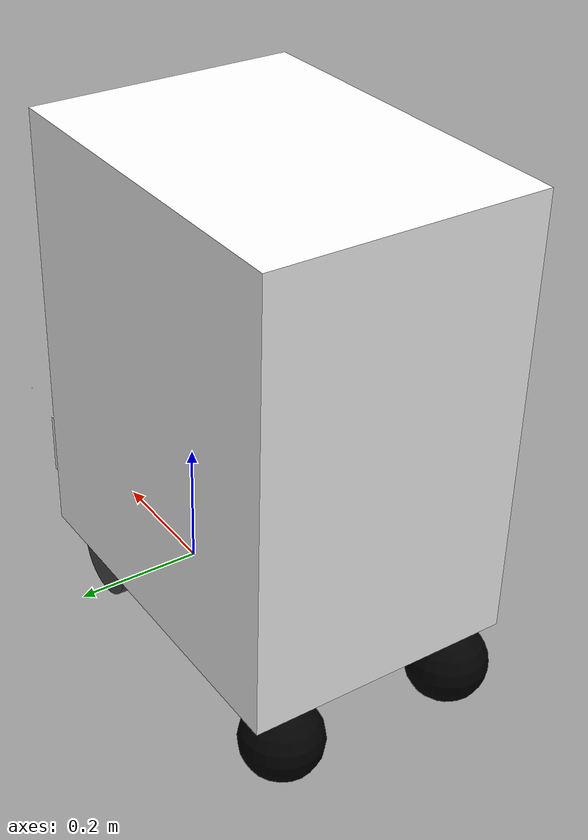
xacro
<?xml version="1.0"?>
<robot name="differential_wheeled_robot" xmlns:xacro="http://www.ros.org/wiki/xacro">

  <xacro:include filename="$(find mastering_ros_robot_description_pkg)/urdf/wheel.urdf.xacro" />

<!-- Defining the colors used in this robot -->
  <material name="Black">
    <color rgba="0.0 0.0 0.0 1.0"/>
  </material>

  <material name="Red">
    <color rgba="0.8 0.0 0.0 1.0"/>
  </material>

  <material name="White">
    <color rgba="1.0 1.0 1.0 1.0"/>
  </material>

  <material name="Blue">
    <color rgba="0.0 0.0 0.8 1.0"/>
  </material>

  <!-- PROPERTY LIST -->
  <!--All units in m-kg-s-radians unit system -->
  <property name="M_PI" value="3.1415926535897931" />
  <property name="M_PI_2" value="1.570796327" />
  <property name="DEG_TO_RAD" value="0.017453293" />

  <!-- Main body dimensions -->
  <!-- Main Body square base   -->
  <property name="base_height" value="0.66" />
  <property name="base_width" value="0.40" />
  <property name="base_length" value="0.55" />
  <property name="base_mass" value="5" /> <!-- in kg-->

  <!-- Main body triangle dimensions -->
  <property name="base_t_mass" value="2" /> <!-- in kg-->
  <property name="triangle_length" value="0.18" />
  <property name="triangle_width" value="0.3" />
  <property name="triangle_height" value="0.1" />

  <!--left caster wheel radius and height -->
  <!-- caster wheel mass -->
  <property name="caster_l_height" value="0.04" />
  <property name="caster_l_radius" value="0.06" />
  <property name="caster_l_mass" value="0.5" /> <!-- in kg-->

  <!--right caster wheel radius and height -->
  <!-- caster wheel mass -->
  <property name="caster_r_height" value="0.04" />
  <property name="caster_r_radius" value="0.06" />
  <property name="caster_r_mass" value="0.5" /> <!-- in kg-->

  <!-- Wheels -->

  <property name="wheel_mass" value="2.5" />  <!-- in kg-->

  <property name="base_x_origin_to_wheel_origin" value="0.025" />
  <property name="base_y_origin_to_wheel_origin" value="0.3" />
  <property name="base_z_origin_to_wheel_origin" value="-0.06" />

  <!-- Hokuyo Laser scanner -->
  <property name="hokuyo_size" value="0.05" />

  <!-- EDITED -->
  <!-- m = mass h = hauteur w = largeur l = longueur -->

  <!-- Macro for calculating inertia of cube -->
  <macro name="box_inertia" params="m h w l">
    <inertia  ixx="${m*(h*h+l*l)/12}" ixy = "0" ixz = "0"
              iyy="${m*(w*w+l*l)/12}" iyz = "0"
              izz="${m*(w*w+h*h)/12}" />
  </macro>

  <!-- Macro for calculating inertia of triangle -->
  <macro name="trangle_inertia" params="m h w l">
    <inertia  ixx="0" ixy = "0" ixz = "0"
              iyy="0" iyz = "0"
              izz="0" />
  </macro>

  <!-- BASE-FOOTPRINT -->
  <!-- base_footprint is a fictitious link(frame) that is on the ground right below base_link origin -->
  <link name="base_footprint">
    <inertial>
      <mass value="0.0001" />
      <origin xyz="0 0 0" />
      <inertia ixx="0.0001" ixy="0.0" ixz="0.0"
          iyy="0.0001" iyz="0.0"
          izz="0.0001" />
    </inertial>
    <visual>
        <origin xyz="0.6 0 0" rpy="0 0 0" />
        <geometry>
            <box size="0.001 0.001 0.001" />
        </geometry>
    </visual>
  </link>

  <gazebo reference="base_footprint">
    <turnGravityOff>false</turnGravityOff>
  </gazebo>

  <joint name="base_footprint_joint" type="fixed">
    <origin xyz="0 0 ${wheel_radius - base_z_origin_to_wheel_origin}" rpy="0 0 0" />
    <parent link="base_footprint"/>
    <child link="base_link" />
  </joint>

  <!-- BASE-LINK -->
  <!--Actual body/chassis of the robot-->
  <link name="base_link">
    <inertial>
      <mass value="${base_mass}" />
      <origin xyz="0 0 0" />
      <!--The 3x3 rotational inertia matrix. -->
        <box_inertia  m="${base_mass}" h="${base_height}" w="${base_width}" l="${base_length}" />

    </inertial>
    <visual>
      <origin xyz="-${base_length/2 - 0.06} 0 ${base_height/2}" rpy="0 0 0" />
      <geometry>

          <box size= "${base_length} ${base_width} ${base_height}" />

      </geometry>
      <material name="White" />
    </visual>
    <collision>
      <origin xyz="-${base_length/2 - 0.06} 0 ${base_height/2}" rpy="0 0 0 " />
      <geometry>

          <box size= "${base_length} ${base_width} ${base_height}" />

      </geometry>
    </collision>
  </link>
  <gazebo reference="base_link">
    <material>Gazebo/White</material>
    <turnGravityOff>false</turnGravityOff>
  </gazebo>

  <!-- BASE-triangle -->

  <link name="base_triangle">
    <inertial>
      <mass value="${base_t_mass}" />
      <origin xyz="0 0 0" />

        <box_inertia  m="${base_mass}" h="${base_height}" w="${base_width}" l="${base_length}" />

    </inertial>
    <visual>
      <origin xyz="0 0 0" rpy="0 0 0" />
      <geometry>

          <box size= "${triangle_length} ${triangle_width} ${triangle_height}" />

      </geometry>
      <material name="White" />
    </visual>
    <collision>
      <origin xyz="0 0 0" rpy="0 0 0 " />
      <geometry>

          <box size= "${triangle_length} ${triangle_width} ${triangle_height}" />

      </geometry>
    </collision>
  </link>

  <joint name="base_triangle" type="fixed">
      <parent link="base_link"/>
      <child link="base_triangle"/>
      <origin xyz="${triangle_length/2} 0 ${triangle_height/2}" rpy="0 0 0"/>
    </joint>

  <gazebo reference="base_triangle">
    <material>Gazebo/White</material>
    <turnGravityOff>false</turnGravityOff>
  </gazebo>

<!--Caster left   -->

    <link name="caster_left_link">

    <visual>
      <origin xyz="0 0 0" rpy="${M_PI/2} 0 0" />
      <geometry>
	<sphere radius="${caster_l_radius}" />
      </geometry>
      <material name="Black" />
    </visual>

      <collision>
        <geometry>

	<sphere radius="${caster_l_radius}" />

        </geometry>
      <origin xyz="0 0 0" rpy="${M_PI/2} 0 0" />
      </collision>
      <inertial>
        <mass value="${caster_l_mass}" />
        <origin xyz="0 0 0" />
        <inertia ixx="0.001" ixy="0.0" ixz="0.0"
                 iyy="0.001" iyz="0.0"
                 izz="0.001" />
      </inertial>
    </link>

 <joint name="caster_left_joint" type="fixed">
      <parent link="base_link"/>
      <child link="caster_left_link"/>
      <origin xyz="-${base_length-0.09} ${base_width/2 - 0.06} -${caster_r_radius}" rpy="${-M_PI/2} 0 0"/>
    </joint>

  <gazebo reference="caster_left_link">
    <turnGravityOff>false</turnGravityOff>
  </gazebo>

<!--Caster right  -->

    <link name="caster_right_link">

    <visual>
      <origin xyz="0.00 0.00 0 " rpy="${M_PI/2} 0 0" />

      <geometry>

	<sphere radius="${caster_r_radius}" />

      </geometry>
      <material name="Black" />
    </visual>

      <collision>
        <geometry>
		<sphere radius="${caster_r_radius}" />
        </geometry>
      <origin xyz="0 0 0 " rpy="${M_PI/2} 0 0" />
      </collision>
      <inertial>
        <mass value="${caster_r_mass}" />
        <origin xyz="0 0 0" />
        <inertia ixx="0.001" ixy="0.0" ixz="0.0"
                 iyy="0.001" iyz="0.0"
                 izz="0.001" />
      </inertial>
    </link>

    <joint name="caster_right_joint" type="fixed">
      <parent link="base_link"/>
      <child link="caster_right_link"/>
      <origin xyz="-${base_length-0.09} ${-base_width/2 + 0.06} -${caster_r_radius}" rpy="${-M_PI/2} 0 0"/>
    </joint>

  <gazebo reference="caster_right_link">
    <turnGravityOff>false</turnGravityOff>
  </gazebo>

<!-- Wheel Definitions -->

  <wheel fb="front" lr="right" parent="base_link" translateX="0.025" translateY="0.5" flipY="1"/>
  <wheel fb="front" lr="left" parent="base_link" translateX="0.025" translateY="-0.5" flipY="1"/>

  <!-- SENSORS -->

  <!-- hokuyo -->

  <link name="hokuyo_link">
    <visual>
      <origin xyz="0 0 0" rpy="0 0 0" />
      <geometry>
        <box size="${hokuyo_size} ${hokuyo_size} ${hokuyo_size}"/>
      </geometry>
      <material name="Blue" />
    </visual>
  </link>
  <joint name="hokuyo_joint" type="fixed">
    <origin xyz="${triangle_length/2 + hokuyo_size/2} 0 ${hokuyo_size/2}" rpy="0 0 0" />
    <parent link="base_triangle"/>
    <child link="hokuyo_link" />
  </joint>
  <gazebo reference="hokuyo_link">
    <material>Gazebo/Blue</material>
    <turnGravityOff>false</turnGravityOff>
    <sensor type="ray" name="head_hokuyo_sensor">
      <pose>${hokuyo_size/2} 0 0 0 0 0</pose>
      <visualize>false</visualize>
      <update_rate>40</update_rate>
      <ray>
        <scan>
          <horizontal>
            <samples>720</samples>
            <resolution>1</resolution>
            <min_angle>-1.570796</min_angle>
            <max_angle>1.570796</max_angle>
          </horizontal>
        </scan>
        <range>
          <min>0.10</min>
          <max>10.0</max>
          <resolution>0.001</resolution>
        </range>
      </ray>
      <plugin name="gazebo_ros_head_hokuyo_controller" filename="libgazebo_ros_laser.so">
        <topicName>/scan</topicName>
        <frameName>hokuyo_link</frameName>
      </plugin>
    </sensor>
  </gazebo>

  <!-- Differential drive controller  -->
  <gazebo>
    <plugin name="differential_drive_controller" filename="libgazebo_ros_diff_drive.so">

      <rosDebugLevel>Debug</rosDebugLevel>
      <publishWheelTF>false</publishWheelTF>
      <robotNamespace>/</robotNamespace>
      <publishTf>1</publishTf>
      <publishWheelJointState>false</publishWheelJointState>
      <alwaysOn>true</alwaysOn>
      <updateRate>100.0</updateRate>
      <leftJoint>front_left_wheel_joint</leftJoint>
      <rightJoint>front_right_wheel_joint</rightJoint>
      <wheelSeparation>${2*base_width}</wheelSeparation>
      <wheelDiameter>${2*wheel_radius}</wheelDiameter>
      <broadcastTF>1</broadcastTF>
      <wheelTorque>30</wheelTorque>
      <wheelAcceleration>1.8</wheelAcceleration>
      <commandTopic>cmd_vel</commandTopic>
      <odometryFrame>odom</odometryFrame>
      <odometryTopic>odom</odometryTopic>
      <robotBaseFrame>base_footprint</robotBaseFrame>

    </plugin>
  </gazebo>

</robot>

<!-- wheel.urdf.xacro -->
<robot name="wheel" xmlns:xacro="http://www.ros.org/wiki/xacro">

  <!-- Wheels -->
  <property name="wheel_radius" value="0.06" />
  <property name="wheel_height" value="0.02" />
  <property name="wheel_mass" value="2.5" /> <!-- in kg-->

  <property name="base_x_origin_to_wheel_origin" value="0.25" />
  <property name="base_y_origin_to_wheel_origin" value="0.3" />
  <property name="base_z_origin_to_wheel_origin" value="0.0" />

  <macro name="cylinder_inertia" params="m r h">
    <inertia  ixx="${m*(3*r*r+h*h)/12}" ixy = "0" ixz = "0"
              iyy="${m*(3*r*r+h*h)/12}" iyz = "0"
              izz="${m*r*r/2}" />
  </macro>

  <xacro:macro name="wheel" params="fb lr parent translateX translateY flipY"> <!--fb : front, back ; lr: left, right -->
    <link name="${fb}_${lr}_wheel">
      <visual>
        <origin xyz="0 0 0" rpy="${flipY*M_PI/2} 0  0 " />
        <geometry>
          <cylinder length="${wheel_height}" radius="${wheel_radius}" />
        </geometry>
        <material name="DarkGray" />
      </visual>
      <collision>
        <origin xyz="0 0 0" rpy="${flipY*M_PI/2} 0 0 " />
        <geometry>
          <cylinder length="${wheel_height}" radius="${wheel_radius}" />
        </geometry>
      </collision>
      <inertial>
        <mass value="${wheel_mass}" />
        <origin xyz="0 0 0" />
        <cylinder_inertia  m="${wheel_mass}" r="${wheel_radius}" h="${wheel_height}" />
      </inertial>
    </link>

    <gazebo reference="${fb}_${lr}_wheel">
      <mu1 value="1.0"/>
      <mu2 value="1.0"/>
      <kp  value="10000000.0" />
      <kd  value="1.0" />
      <fdir1 value="1 0 0"/>
      <material>Gazebo/Grey</material>
      <turnGravityOff>false</turnGravityOff>
    </gazebo>

    <joint name="${fb}_${lr}_wheel_joint" type="continuous">
      <parent link="${parent}"/>
      <child link="${fb}_${lr}_wheel"/>
      <origin xyz="${translateX * base_x_origin_to_wheel_origin} ${translateY * base_y_origin_to_wheel_origin} ${base_z_origin_to_wheel_origin}" rpy="0 0 0" />
      <axis xyz="0 1 0" rpy="0  0" />
      <limit effort="100" velocity="100"/>
      <joint_properties damping="0.0" friction="0.0"/>
    </joint>

    <!-- Transmission is important to link the joints and the controller -->
    <transmission name="${fb}_${lr}_wheel_joint_trans">
      <type>transmission_interface/SimpleTransmission</type>
      <joint name="${fb}_${lr}_wheel_joint" />
      <actuator name="${fb}_${lr}_wheel_joint_motor">
        <hardwareInterface>EffortJointInterface</hardwareInterface>
        <mechanicalReduction>1</mechanicalReduction>
      </actuator>
    </transmission>

  </xacro:macro>
</robot>
